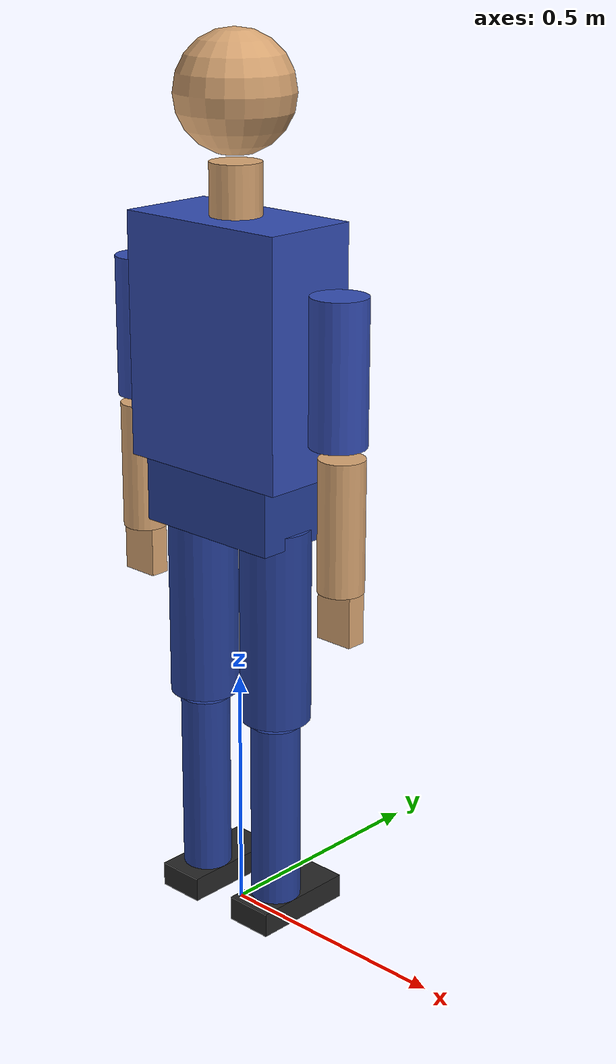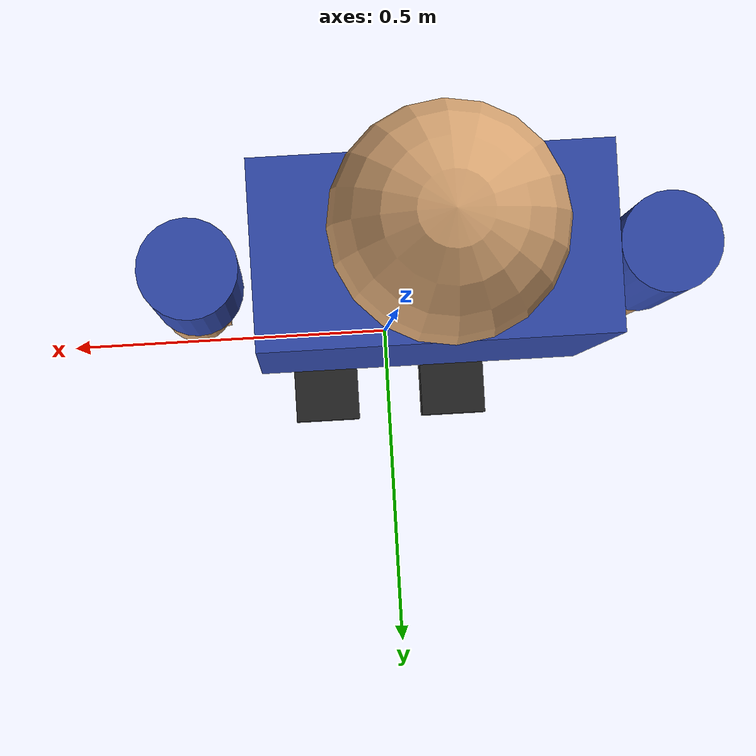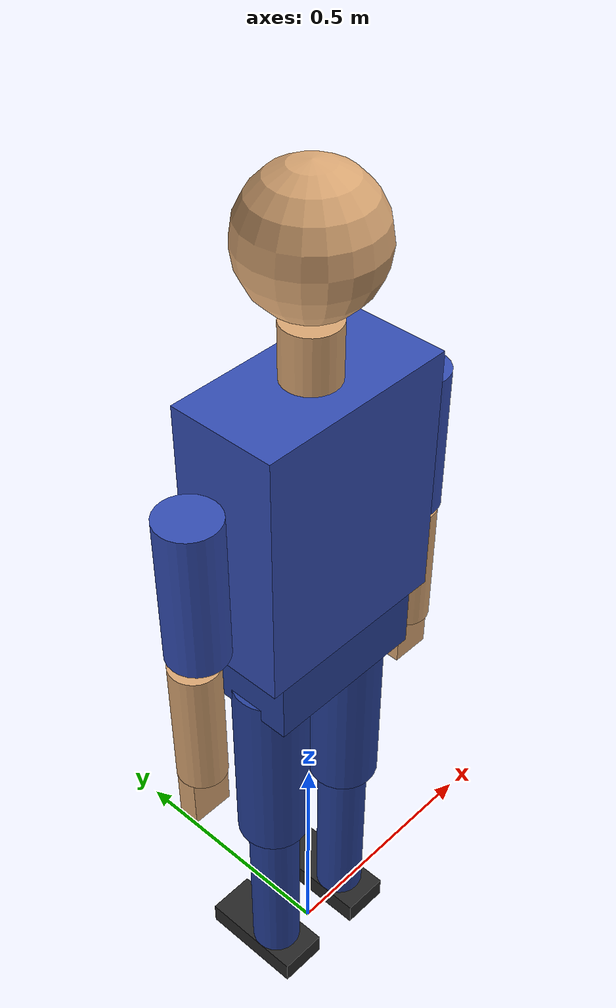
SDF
<?xml version="1.0" ?>
<sdf version="1.10">
  <model name="standing_person">
    <static>true</static>
    <link name="body">

      <!-- HEAD: sphere, top at z=1.77m -->
      <visual name="head">
        <pose>0 0 1.655 0 0 0</pose>
        <geometry>
          <sphere><radius>0.115</radius></sphere>
        </geometry>
        <material>
          <ambient>0.85 0.65 0.45 1</ambient>
          <diffuse>0.85 0.65 0.45 1</diffuse>
        </material>
      </visual>
      <collision name="head_col">
        <pose>0 0 1.655 0 0 0</pose>
        <geometry>
          <sphere><radius>0.115</radius></sphere>
        </geometry>
      </collision>

      <!-- NECK -->
      <visual name="neck">
        <pose>0 0 1.48 0 0 0</pose>
        <geometry>
          <cylinder><radius>0.05</radius><length>0.10</length></cylinder>
        </geometry>
        <material>
          <ambient>0.85 0.65 0.45 1</ambient>
          <diffuse>0.85 0.65 0.45 1</diffuse>
        </material>
      </visual>
      <collision name="neck_col">
        <pose>0 0 1.48 0 0 0</pose>
        <geometry>
          <cylinder><radius>0.05</radius><length>0.10</length></cylinder>
        </geometry>
      </collision>

      <!-- TORSO -->
      <visual name="torso">
        <pose>0 0 1.19 0 0 0</pose>
        <geometry>
          <box><size>0.38 0.20 0.48</size></box>
        </geometry>
        <material>
          <ambient>0.20 0.30 0.70 1</ambient>
          <diffuse>0.20 0.30 0.70 1</diffuse>
        </material>
      </visual>
      <collision name="torso_col">
        <pose>0 0 1.19 0 0 0</pose>
        <geometry>
          <box><size>0.38 0.20 0.48</size></box>
        </geometry>
      </collision>

      <!-- PELVIS -->
      <visual name="pelvis">
        <pose>0 0 0.90 0 0 0</pose>
        <geometry>
          <box><size>0.32 0.18 0.16</size></box>
        </geometry>
        <material>
          <ambient>0.15 0.25 0.60 1</ambient>
          <diffuse>0.15 0.25 0.60 1</diffuse>
        </material>
      </visual>
      <collision name="pelvis_col">
        <pose>0 0 0.90 0 0 0</pose>
        <geometry>
          <box><size>0.32 0.18 0.16</size></box>
        </geometry>
      </collision>

      <!-- RIGHT UPPER ARM -->
      <visual name="right_upper_arm">
        <pose>0.26 0 1.18 0 0 0</pose>
        <geometry>
          <cylinder><radius>0.055</radius><length>0.28</length></cylinder>
        </geometry>
        <material>
          <ambient>0.20 0.30 0.70 1</ambient>
          <diffuse>0.20 0.30 0.70 1</diffuse>
        </material>
      </visual>
      <collision name="right_upper_arm_col">
        <pose>0.26 0 1.18 0 0 0</pose>
        <geometry>
          <cylinder><radius>0.055</radius><length>0.28</length></cylinder>
        </geometry>
      </collision>

      <!-- LEFT UPPER ARM -->
      <visual name="left_upper_arm">
        <pose>-0.26 0 1.18 0 0 0</pose>
        <geometry>
          <cylinder><radius>0.055</radius><length>0.28</length></cylinder>
        </geometry>
        <material>
          <ambient>0.20 0.30 0.70 1</ambient>
          <diffuse>0.20 0.30 0.70 1</diffuse>
        </material>
      </visual>
      <collision name="left_upper_arm_col">
        <pose>-0.26 0 1.18 0 0 0</pose>
        <geometry>
          <cylinder><radius>0.055</radius><length>0.28</length></cylinder>
        </geometry>
      </collision>

      <!-- RIGHT FOREARM -->
      <visual name="right_forearm">
        <pose>0.27 0 0.89 0 0 0</pose>
        <geometry>
          <cylinder><radius>0.045</radius><length>0.26</length></cylinder>
        </geometry>
        <material>
          <ambient>0.85 0.65 0.45 1</ambient>
          <diffuse>0.85 0.65 0.45 1</diffuse>
        </material>
      </visual>
      <collision name="right_forearm_col">
        <pose>0.27 0 0.89 0 0 0</pose>
        <geometry>
          <cylinder><radius>0.045</radius><length>0.26</length></cylinder>
        </geometry>
      </collision>

      <!-- LEFT FOREARM -->
      <visual name="left_forearm">
        <pose>-0.27 0 0.89 0 0 0</pose>
        <geometry>
          <cylinder><radius>0.045</radius><length>0.26</length></cylinder>
        </geometry>
        <material>
          <ambient>0.85 0.65 0.45 1</ambient>
          <diffuse>0.85 0.65 0.45 1</diffuse>
        </material>
      </visual>
      <collision name="left_forearm_col">
        <pose>-0.27 0 0.89 0 0 0</pose>
        <geometry>
          <cylinder><radius>0.045</radius><length>0.26</length></cylinder>
        </geometry>
      </collision>

      <!-- RIGHT HAND -->
      <visual name="right_hand">
        <pose>0.27 0 0.71 0 0 0</pose>
        <geometry>
          <box><size>0.08 0.04 0.10</size></box>
        </geometry>
        <material>
          <ambient>0.85 0.65 0.45 1</ambient>
          <diffuse>0.85 0.65 0.45 1</diffuse>
        </material>
      </visual>
      <collision name="right_hand_col">
        <pose>0.27 0 0.71 0 0 0</pose>
        <geometry>
          <box><size>0.08 0.04 0.10</size></box>
        </geometry>
      </collision>

      <!-- LEFT HAND -->
      <visual name="left_hand">
        <pose>-0.27 0 0.71 0 0 0</pose>
        <geometry>
          <box><size>0.08 0.04 0.10</size></box>
        </geometry>
        <material>
          <ambient>0.85 0.65 0.45 1</ambient>
          <diffuse>0.85 0.65 0.45 1</diffuse>
        </material>
      </visual>
      <collision name="left_hand_col">
        <pose>-0.27 0 0.71 0 0 0</pose>
        <geometry>
          <box><size>0.08 0.04 0.10</size></box>
        </geometry>
      </collision>

      <!-- RIGHT THIGH -->
      <visual name="right_thigh">
        <pose>0.10 0 0.645 0 0 0</pose>
        <geometry>
          <cylinder><radius>0.07</radius><length>0.40</length></cylinder>
        </geometry>
        <material>
          <ambient>0.15 0.25 0.60 1</ambient>
          <diffuse>0.15 0.25 0.60 1</diffuse>
        </material>
      </visual>
      <collision name="right_thigh_col">
        <pose>0.10 0 0.645 0 0 0</pose>
        <geometry>
          <cylinder><radius>0.07</radius><length>0.40</length></cylinder>
        </geometry>
      </collision>

      <!-- LEFT THIGH -->
      <visual name="left_thigh">
        <pose>-0.10 0 0.645 0 0 0</pose>
        <geometry>
          <cylinder><radius>0.07</radius><length>0.40</length></cylinder>
        </geometry>
        <material>
          <ambient>0.15 0.25 0.60 1</ambient>
          <diffuse>0.15 0.25 0.60 1</diffuse>
        </material>
      </visual>
      <collision name="left_thigh_col">
        <pose>-0.10 0 0.645 0 0 0</pose>
        <geometry>
          <cylinder><radius>0.07</radius><length>0.40</length></cylinder>
        </geometry>
      </collision>

      <!-- RIGHT SHIN -->
      <visual name="right_shin">
        <pose>0.10 0 0.24 0 0 0</pose>
        <geometry>
          <cylinder><radius>0.05</radius><length>0.38</length></cylinder>
        </geometry>
        <material>
          <ambient>0.15 0.25 0.60 1</ambient>
          <diffuse>0.15 0.25 0.60 1</diffuse>
        </material>
      </visual>
      <collision name="right_shin_col">
        <pose>0.10 0 0.24 0 0 0</pose>
        <geometry>
          <cylinder><radius>0.05</radius><length>0.38</length></cylinder>
        </geometry>
      </collision>

      <!-- LEFT SHIN -->
      <visual name="left_shin">
        <pose>-0.10 0 0.24 0 0 0</pose>
        <geometry>
          <cylinder><radius>0.05</radius><length>0.38</length></cylinder>
        </geometry>
        <material>
          <ambient>0.15 0.25 0.60 1</ambient>
          <diffuse>0.15 0.25 0.60 1</diffuse>
        </material>
      </visual>
      <collision name="left_shin_col">
        <pose>-0.10 0 0.24 0 0 0</pose>
        <geometry>
          <cylinder><radius>0.05</radius><length>0.38</length></cylinder>
        </geometry>
      </collision>

      <!-- RIGHT FOOT -->
      <visual name="right_foot">
        <pose>0.10 0.03 0.025 0 0 0</pose>
        <geometry>
          <box><size>0.10 0.22 0.05</size></box>
        </geometry>
        <material>
          <ambient>0.15 0.15 0.15 1</ambient>
          <diffuse>0.15 0.15 0.15 1</diffuse>
        </material>
      </visual>
      <collision name="right_foot_col">
        <pose>0.10 0.03 0.025 0 0 0</pose>
        <geometry>
          <box><size>0.10 0.22 0.05</size></box>
        </geometry>
      </collision>

      <!-- LEFT FOOT -->
      <visual name="left_foot">
        <pose>-0.10 0.03 0.025 0 0 0</pose>
        <geometry>
          <box><size>0.10 0.22 0.05</size></box>
        </geometry>
        <material>
          <ambient>0.15 0.15 0.15 1</ambient>
          <diffuse>0.15 0.15 0.15 1</diffuse>
        </material>
      </visual>
      <collision name="left_foot_col">
        <pose>-0.10 0.03 0.025 0 0 0</pose>
        <geometry>
          <box><size>0.10 0.22 0.05</size></box>
        </geometry>
      </collision>

    </link>
  </model>
</sdf>
